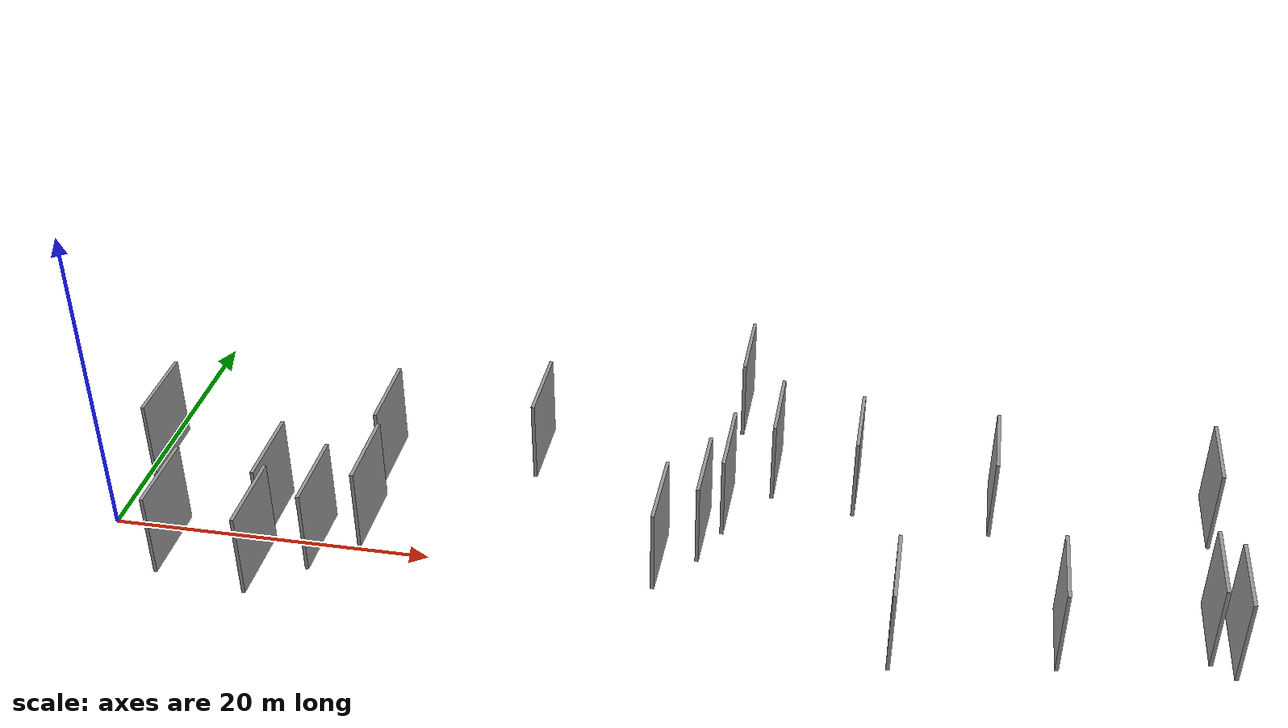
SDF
<sdf version="1.6">
 <world name="default">
  <scene>
   <sky><clouds><speed>12</speed></clouds></sky>
   <ambient>0.4 0.4 0.4 1</ambient>
   <background>0.7 0.7 0.7 1</background>
   <shadows>1</shadows>
  </scene>
  <gravity>0 0 -9.8066</gravity>
  <magnetic_field>6e-06 2.3e-05 -4.2e-05</magnetic_field>
  <physics default="0" name="default_physics" type="ode">
   <ode>
    <solver>
     <type>quick</type>
     <iters>10</iters>
     <sor>1.0</sor>
     <use_dynamic_moi_rescaling>0</use_dynamic_moi_rescaling>
    </solver>
    <constraints>
     <cfm>0</cfm>
     <erp>0.2</erp>
     <contact_max_correcting_vel>100</contact_max_correcting_vel>
     <contact_surface_layer>0.001</contact_surface_layer>
    </constraints>
   </ode>
   <max_step_size>0.004</max_step_size>
   <real_time_factor>1</real_time_factor>
   <real_time_update_rate>250</real_time_update_rate>
  </physics>
  <light name="sun" type="directional">
   <pose>0 0 10 0 0 0</pose>
   <diffuse>0.8 0.8 0.8 1</diffuse>
   <specular>0.2 0.2 0.2 1</specular>
   <attenuation>
    <range>1000</range>
    <constant>0.9</constant>
    <linear>0.01</linear>
    <quadratic>0.001</quadratic>
   </attenuation>
   <direction>-0.5 0.1 -0.9</direction>
  </light>
  <model name="grey_wall_1">
   <static>1</static>
   <pose>45.1255 4.6349 5.0 0.000000 0.000000 1.570796</pose>
   <link name="link">
    <pose>0 0 2.50 0 0 0</pose>
    <collision name="collision"><geometry><box><size>5.00 0.2 5.00</size></box></geometry></collision>
    <visual name="visual">
     <cast_shadows>0</cast_shadows>
     <geometry><box><size>5.00 0.2 5.00</size></box></geometry>
     <material>
      <script>
       <uri>model://grey_wall/materials/scripts</uri>
       <uri>model://grey_wall/materials/textures</uri>
       <name>vrc/grey_wall</name>
      </script>
     </material>
    </visual>
   </link>
  </model>
  <model name="grey_wall_2">
   <static>1</static>
   <pose>26.2473 5.0978 5.0 0.000000 0.000000 1.570796</pose>
   <link name="link">
    <pose>0 0 2.50 0 0 0</pose>
    <collision name="collision"><geometry><box><size>5.00 0.2 5.00</size></box></geometry></collision>
    <visual name="visual">
     <cast_shadows>0</cast_shadows>
     <geometry><box><size>5.00 0.2 5.00</size></box></geometry>
     <material>
      <script>
       <uri>model://grey_wall/materials/scripts</uri>
       <uri>model://grey_wall/materials/textures</uri>
       <name>vrc/grey_wall</name>
      </script>
     </material>
    </visual>
   </link>
  </model>
  <model name="grey_wall_3">
   <static>1</static>
   <pose>17.4704 2.7436 5.0 0.000000 0.000000 1.570796</pose>
   <link name="link">
    <pose>0 0 2.50 0 0 0</pose>
    <collision name="collision"><geometry><box><size>5.00 0.2 5.00</size></box></geometry></collision>
    <visual name="visual">
     <cast_shadows>0</cast_shadows>
     <geometry><box><size>5.00 0.2 5.00</size></box></geometry>
     <material>
      <script>
       <uri>model://grey_wall/materials/scripts</uri>
       <uri>model://grey_wall/materials/textures</uri>
       <name>vrc/grey_wall</name>
      </script>
     </material>
    </visual>
   </link>
  </model>
  <model name="grey_wall_4">
   <static>1</static>
   <pose>34.8560 -3.8197 5.0 0.000000 0.000000 1.570796</pose>
   <link name="link">
    <pose>0 0 2.50 0 0 0</pose>
    <collision name="collision"><geometry><box><size>5.00 0.2 5.00</size></box></geometry></collision>
    <visual name="visual">
     <cast_shadows>0</cast_shadows>
     <geometry><box><size>5.00 0.2 5.00</size></box></geometry>
     <material>
      <script>
       <uri>model://grey_wall/materials/scripts</uri>
       <uri>model://grey_wall/materials/textures</uri>
       <name>vrc/grey_wall</name>
      </script>
     </material>
    </visual>
   </link>
  </model>
  <model name="grey_wall_5">
   <static>1</static>
   <pose>52.9062 4.0722 5.0 0.000000 0.000000 1.570796</pose>
   <link name="link">
    <pose>0 0 2.50 0 0 0</pose>
    <collision name="collision"><geometry><box><size>5.00 0.2 5.00</size></box></geometry></collision>
    <visual name="visual">
     <cast_shadows>0</cast_shadows>
     <geometry><box><size>5.00 0.2 5.00</size></box></geometry>
     <material>
      <script>
       <uri>model://grey_wall/materials/scripts</uri>
       <uri>model://grey_wall/materials/textures</uri>
       <name>vrc/grey_wall</name>
      </script>
     </material>
    </visual>
   </link>
  </model>
  <model name="grey_wall_6">
   <static>1</static>
   <pose>40.3292 5.4675 5.0 0.000000 0.000000 1.570796</pose>
   <link name="link">
    <pose>0 0 2.50 0 0 0</pose>
    <collision name="collision"><geometry><box><size>5.00 0.2 5.00</size></box></geometry></collision>
    <visual name="visual">
     <cast_shadows>0</cast_shadows>
     <geometry><box><size>5.00 0.2 5.00</size></box></geometry>
     <material>
      <script>
       <uri>model://grey_wall/materials/scripts</uri>
       <uri>model://grey_wall/materials/textures</uri>
       <name>vrc/grey_wall</name>
      </script>
     </material>
    </visual>
   </link>
  </model>
  <model name="grey_wall_7">
   <static>1</static>
   <pose>65.6613 -5.6756 5.0 0.000000 0.000000 1.570796</pose>
   <link name="link">
    <pose>0 0 2.50 0 0 0</pose>
    <collision name="collision"><geometry><box><size>5.00 0.2 5.00</size></box></geometry></collision>
    <visual name="visual">
     <cast_shadows>0</cast_shadows>
     <geometry><box><size>5.00 0.2 5.00</size></box></geometry>
     <material>
      <script>
       <uri>model://grey_wall/materials/scripts</uri>
       <uri>model://grey_wall/materials/textures</uri>
       <name>vrc/grey_wall</name>
      </script>
     </material>
    </visual>
   </link>
  </model>
  <model name="grey_wall_8">
   <static>1</static>
   <pose>15.6821 -5.5111 5.0 0.000000 0.000000 1.570796</pose>
   <link name="link">
    <pose>0 0 2.50 0 0 0</pose>
    <collision name="collision"><geometry><box><size>5.00 0.2 5.00</size></box></geometry></collision>
    <visual name="visual">
     <cast_shadows>0</cast_shadows>
     <geometry><box><size>5.00 0.2 5.00</size></box></geometry>
     <material>
      <script>
       <uri>model://grey_wall/materials/scripts</uri>
       <uri>model://grey_wall/materials/textures</uri>
       <name>vrc/grey_wall</name>
      </script>
     </material>
    </visual>
   </link>
  </model>
  <model name="grey_wall_9">
   <static>1</static>
   <pose>12.9343 -8.0553 5.0 0.000000 0.000000 1.570796</pose>
   <link name="link">
    <pose>0 0 2.50 0 0 0</pose>
    <collision name="collision"><geometry><box><size>5.00 0.2 5.00</size></box></geometry></collision>
    <visual name="visual">
     <cast_shadows>0</cast_shadows>
     <geometry><box><size>5.00 0.2 5.00</size></box></geometry>
     <material>
      <script>
       <uri>model://grey_wall/materials/scripts</uri>
       <uri>model://grey_wall/materials/textures</uri>
       <name>vrc/grey_wall</name>
      </script>
     </material>
    </visual>
   </link>
  </model>
  <model name="grey_wall_10">
   <static>1</static>
   <pose>56.5571 -6.5702 5.0 0.000000 0.000000 1.570796</pose>
   <link name="link">
    <pose>0 0 2.50 0 0 0</pose>
    <collision name="collision"><geometry><box><size>5.00 0.2 5.00</size></box></geometry></collision>
    <visual name="visual">
     <cast_shadows>0</cast_shadows>
     <geometry><box><size>5.00 0.2 5.00</size></box></geometry>
     <material>
      <script>
       <uri>model://grey_wall/materials/scripts</uri>
       <uri>model://grey_wall/materials/textures</uri>
       <name>vrc/grey_wall</name>
      </script>
     </material>
    </visual>
   </link>
  </model>
  <model name="grey_wall_11">
   <static>1</static>
   <pose>7.4788 -7.1962 5.0 0.000000 0.000000 1.570796</pose>
   <link name="link">
    <pose>0 0 2.50 0 0 0</pose>
    <collision name="collision"><geometry><box><size>5.00 0.2 5.00</size></box></geometry></collision>
    <visual name="visual">
     <cast_shadows>0</cast_shadows>
     <geometry><box><size>5.00 0.2 5.00</size></box></geometry>
     <material>
      <script>
       <uri>model://grey_wall/materials/scripts</uri>
       <uri>model://grey_wall/materials/textures</uri>
       <name>vrc/grey_wall</name>
      </script>
     </material>
    </visual>
   </link>
  </model>
  <model name="grey_wall_12">
   <static>1</static>
   <pose>64.4495 -4.7952 5.0 0.000000 0.000000 1.570796</pose>
   <link name="link">
    <pose>0 0 2.50 0 0 0</pose>
    <collision name="collision"><geometry><box><size>5.00 0.2 5.00</size></box></geometry></collision>
    <visual name="visual">
     <cast_shadows>0</cast_shadows>
     <geometry><box><size>5.00 0.2 5.00</size></box></geometry>
     <material>
      <script>
       <uri>model://grey_wall/materials/scripts</uri>
       <uri>model://grey_wall/materials/textures</uri>
       <name>vrc/grey_wall</name>
      </script>
     </material>
    </visual>
   </link>
  </model>
  <model name="grey_wall_13">
   <static>1</static>
   <pose>37.8097 11.5834 5.0 0.000000 0.000000 1.570796</pose>
   <link name="link">
    <pose>0 0 2.50 0 0 0</pose>
    <collision name="collision"><geometry><box><size>5.00 0.2 5.00</size></box></geometry></collision>
    <visual name="visual">
     <cast_shadows>0</cast_shadows>
     <geometry><box><size>5.00 0.2 5.00</size></box></geometry>
     <material>
      <script>
       <uri>model://grey_wall/materials/scripts</uri>
       <uri>model://grey_wall/materials/textures</uri>
       <name>vrc/grey_wall</name>
      </script>
     </material>
    </visual>
   </link>
  </model>
  <model name="grey_wall_14">
   <static>1</static>
   <pose>37.9137 1.6221 5.0 0.000000 0.000000 1.570796</pose>
   <link name="link">
    <pose>0 0 2.50 0 0 0</pose>
    <collision name="collision"><geometry><box><size>5.00 0.2 5.00</size></box></geometry></collision>
    <visual name="visual">
     <cast_shadows>0</cast_shadows>
     <geometry><box><size>5.00 0.2 5.00</size></box></geometry>
     <material>
      <script>
       <uri>model://grey_wall/materials/scripts</uri>
       <uri>model://grey_wall/materials/textures</uri>
       <name>vrc/grey_wall</name>
      </script>
     </material>
    </visual>
   </link>
  </model>
  <model name="grey_wall_15">
   <static>1</static>
   <pose>17.9428 -3.1046 5.0 0.000000 0.000000 1.570796</pose>
   <link name="link">
    <pose>0 0 2.50 0 0 0</pose>
    <collision name="collision"><geometry><box><size>5.00 0.2 5.00</size></box></geometry></collision>
    <visual name="visual">
     <cast_shadows>0</cast_shadows>
     <geometry><box><size>5.00 0.2 5.00</size></box></geometry>
     <material>
      <script>
       <uri>model://grey_wall/materials/scripts</uri>
       <uri>model://grey_wall/materials/textures</uri>
       <name>vrc/grey_wall</name>
      </script>
     </material>
    </visual>
   </link>
  </model>
  <model name="grey_wall_16">
   <static>1</static>
   <pose>36.8913 -1.0545 5.0 0.000000 0.000000 1.570796</pose>
   <link name="link">
    <pose>0 0 2.50 0 0 0</pose>
    <collision name="collision"><geometry><box><size>5.00 0.2 5.00</size></box></geometry></collision>
    <visual name="visual">
     <cast_shadows>0</cast_shadows>
     <geometry><box><size>5.00 0.2 5.00</size></box></geometry>
     <material>
      <script>
       <uri>model://grey_wall/materials/scripts</uri>
       <uri>model://grey_wall/materials/textures</uri>
       <name>vrc/grey_wall</name>
      </script>
     </material>
    </visual>
   </link>
  </model>
  <model name="grey_wall_17">
   <static>1</static>
   <pose>65.1112 5.1265 5.0 0.000000 0.000000 1.570796</pose>
   <link name="link">
    <pose>0 0 2.50 0 0 0</pose>
    <collision name="collision"><geometry><box><size>5.00 0.2 5.00</size></box></geometry></collision>
    <visual name="visual">
     <cast_shadows>0</cast_shadows>
     <geometry><box><size>5.00 0.2 5.00</size></box></geometry>
     <material>
      <script>
       <uri>model://grey_wall/materials/scripts</uri>
       <uri>model://grey_wall/materials/textures</uri>
       <name>vrc/grey_wall</name>
      </script>
     </material>
    </visual>
   </link>
  </model>
  <model name="grey_wall_18">
   <static>1</static>
   <pose>47.9540 -8.0526 5.0 0.000000 0.000000 1.570796</pose>
   <link name="link">
    <pose>0 0 2.50 0 0 0</pose>
    <collision name="collision"><geometry><box><size>5.00 0.2 5.00</size></box></geometry></collision>
    <visual name="visual">
     <cast_shadows>0</cast_shadows>
     <geometry><box><size>5.00 0.2 5.00</size></box></geometry>
     <material>
      <script>
       <uri>model://grey_wall/materials/scripts</uri>
       <uri>model://grey_wall/materials/textures</uri>
       <name>vrc/grey_wall</name>
      </script>
     </material>
    </visual>
   </link>
  </model>
  <model name="grey_wall_19">
   <static>1</static>
   <pose>12.4685 -3.8119 5.0 0.000000 0.000000 1.570796</pose>
   <link name="link">
    <pose>0 0 2.50 0 0 0</pose>
    <collision name="collision"><geometry><box><size>5.00 0.2 5.00</size></box></geometry></collision>
    <visual name="visual">
     <cast_shadows>0</cast_shadows>
     <geometry><box><size>5.00 0.2 5.00</size></box></geometry>
     <material>
      <script>
       <uri>model://grey_wall/materials/scripts</uri>
       <uri>model://grey_wall/materials/textures</uri>
       <name>vrc/grey_wall</name>
      </script>
     </material>
    </visual>
   </link>
  </model>
  <model name="grey_wall_20">
   <static>1</static>
   <pose>3.9711 1.0823 5.0 0.000000 0.000000 1.570796</pose>
   <link name="link">
    <pose>0 0 2.50 0 0 0</pose>
    <collision name="collision"><geometry><box><size>5.00 0.2 5.00</size></box></geometry></collision>
    <visual name="visual">
     <cast_shadows>0</cast_shadows>
     <geometry><box><size>5.00 0.2 5.00</size></box></geometry>
     <material>
      <script>
       <uri>model://grey_wall/materials/scripts</uri>
       <uri>model://grey_wall/materials/textures</uri>
       <name>vrc/grey_wall</name>
      </script>
     </material>
    </visual>
   </link>
  </model>
 </world>
</sdf>
